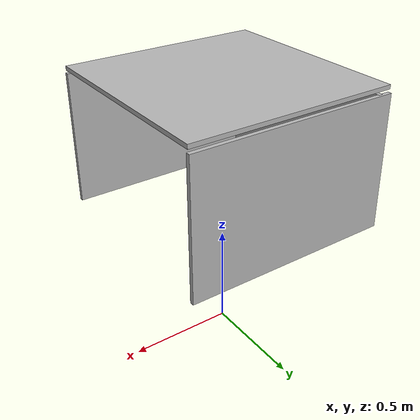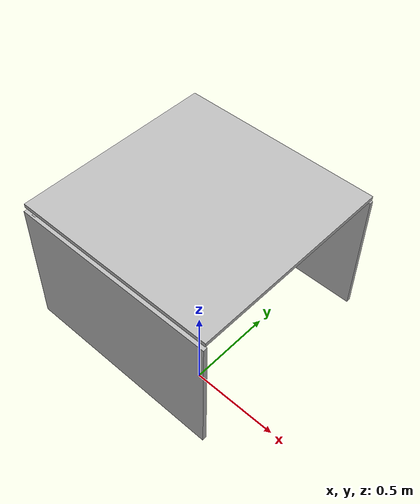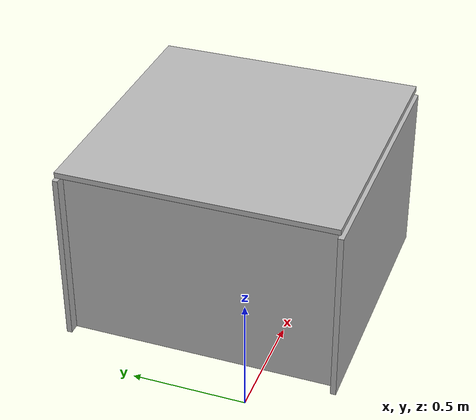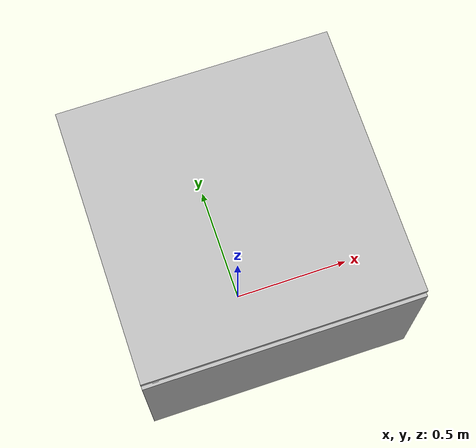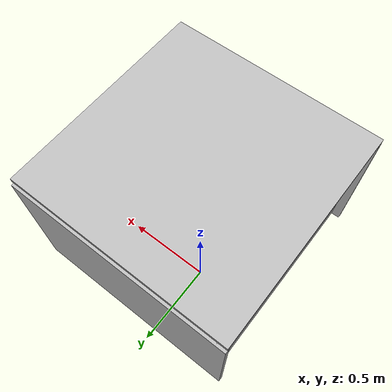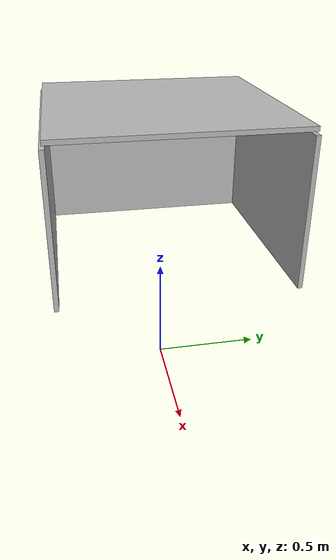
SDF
<?xml version="1.0" ?>
<sdf version="1.7">
  <!-- One can change this world to his needs or use another one. -->

  <world name="default">
    <model name="TableBehind">
			<pose> -0.45 0.0 0.95 0.0 0.0 0.0</pose>
			<static>true</static>
			<link name='linkTableBehind'>
				<pose>0 0 0 0 0 0</pose>

				<collision name="my_collisionlinkTableBehind">
		 			<pose>0 0 0 0 0 0</pose>
					<geometry>
		        <box>
		          <size>0.02 1.0 0.65</size>
		        </box>
		      </geometry>
	      </collision>

				<visual name="my_visuallinkTableBehind">
					<geometry>
		        <box>
					<size>0.02 1.0 0.65</size>
		        </box>
		      </geometry>
	      </visual>

				<self_collide>0</self_collide>
				<gravity>1</gravity>
			</link>
    </model>

	<model name="TableRoof">
			<pose> 0.0 0.0 1.3 0.0 0.0 0.0</pose>
			<static>true</static>
			<link name='linkTableRoof'>
				<pose>0 0 0 0 0 0</pose>

				<collision name="my_collisionTableRoof">
		 			<pose>0 0 0 0 0 0</pose>
					<geometry>
		        <box>
		          <size>1.0 1.0 0.02</size>
		        </box>
		      </geometry>
	      </collision>

				<visual name="my_visualTableRoof">
					<geometry>
		        <box>
					<size>1.0 1.0 0.02</size>
		        </box>
		      </geometry>
	      </visual>

				<self_collide>0</self_collide>
				<gravity>1</gravity>
		   </link>
    </model>

	<model name="TableRight">
			<pose>0.0 -0.50 0.95 0 0 0 </pose>
			<static>true</static>
			<link name='linkTableRight'>
				<pose>0 0 0 0 0 0</pose>

				<collision name="my_collisionTableRight">
		 			<pose>0 0 0 0 0 0</pose>
					<geometry>
		        <box>
		          <size>1.0 0.02 0.65</size>
		        </box>
		            </geometry>
	            </collision>

				<visual name="my_visualTableRight">
					<geometry>
		        <box>
					<size>1.0 0.02 0.65</size>
		        </box>
		           </geometry>
	      </visual>

				<self_collide>0</self_collide>
				<gravity>1</gravity>
			</link>
    </model>

	<model name="TableLeft">
			<pose>0.0 0.50 0.95 0 0 0 </pose>
			<static>true</static>
			<link name='linkTableLeft'>
				<pose>0 0 0 0 0 0</pose>

				<collision name="my_collisionTableLeft">
		 			<pose>0 0 0 0 0 0</pose>
					<geometry>
		        <box>
		          <size>1.0 0.02 0.65</size>
		        </box>
		            </geometry>
	            </collision>

				<visual name="my_visualTableLeft">
					<geometry>
		        <box>
					<size>1.0 0.02 0.65</size>
		        </box>
		           </geometry>
	      </visual>

				<self_collide>0</self_collide>
				<gravity>1</gravity>
			</link>
    </model>

</world>
</sdf>
